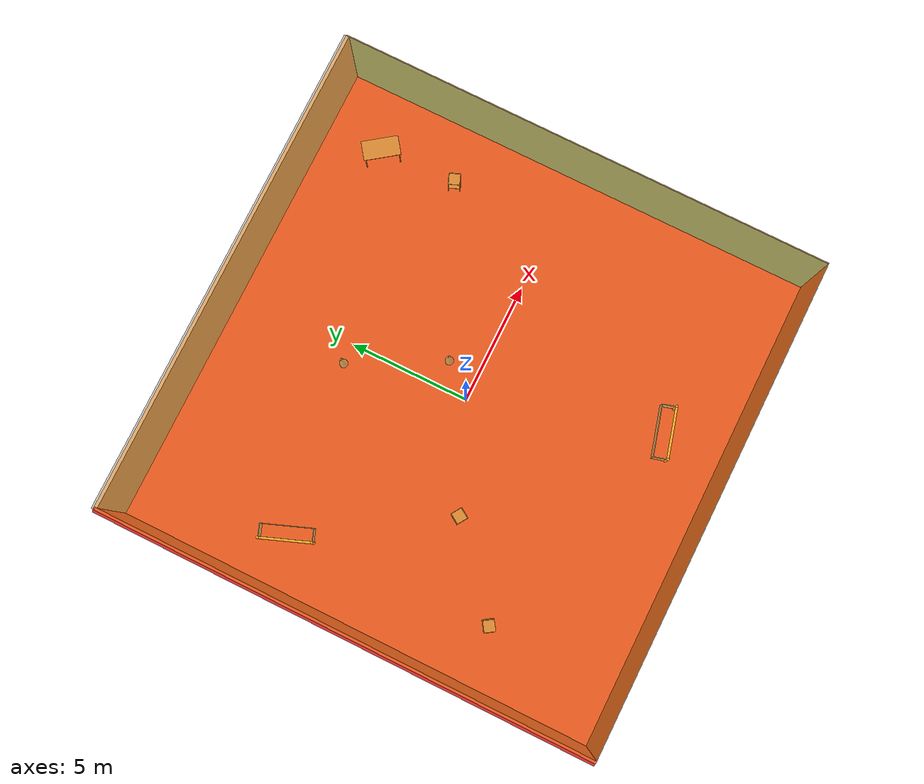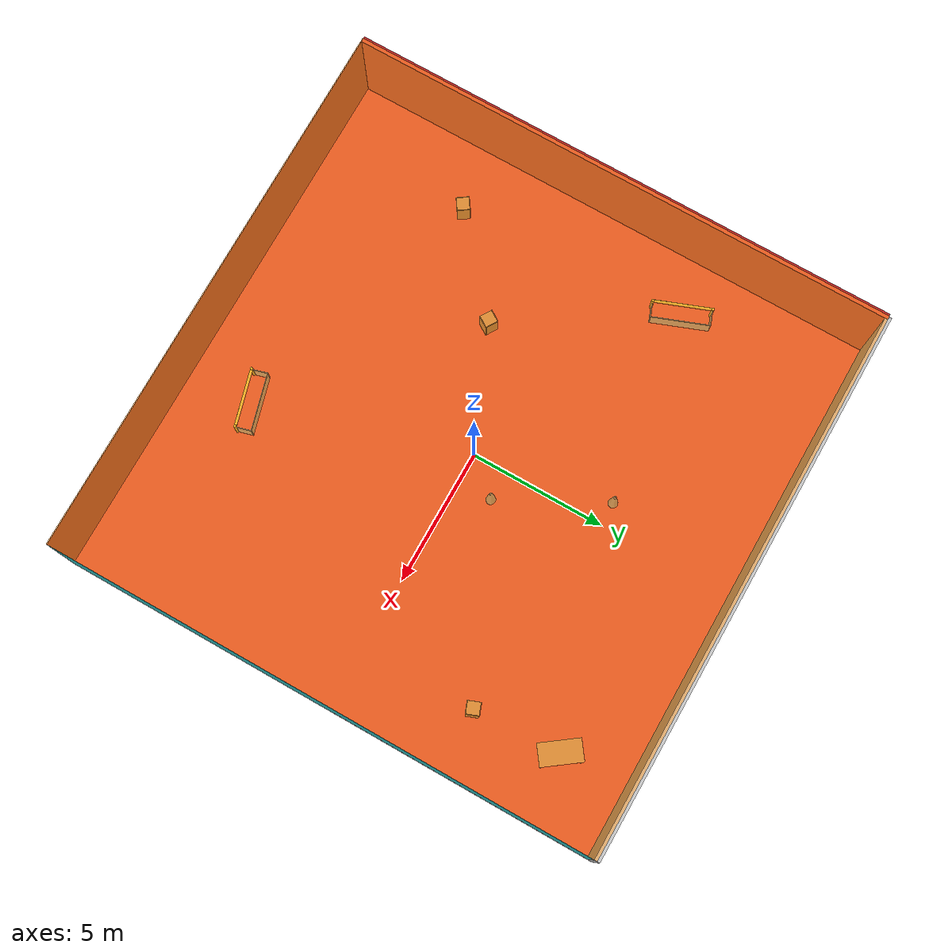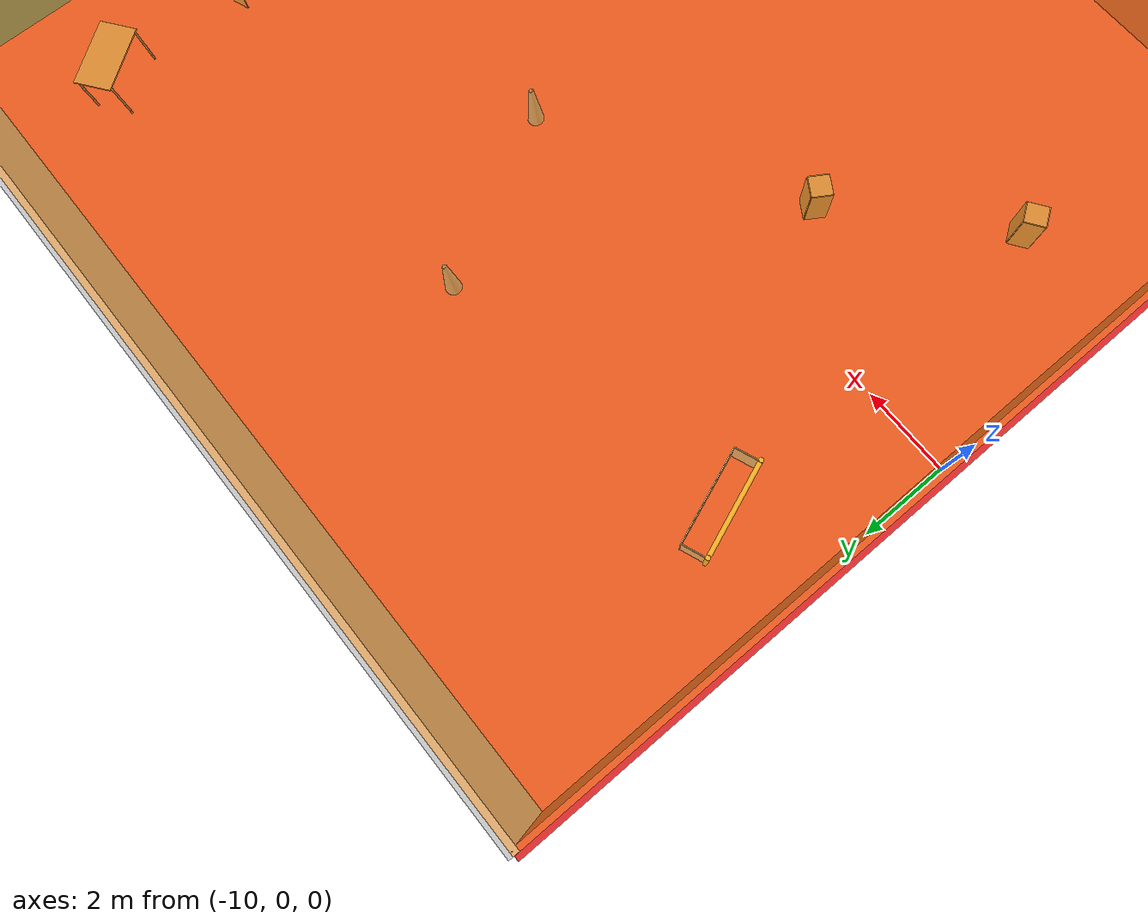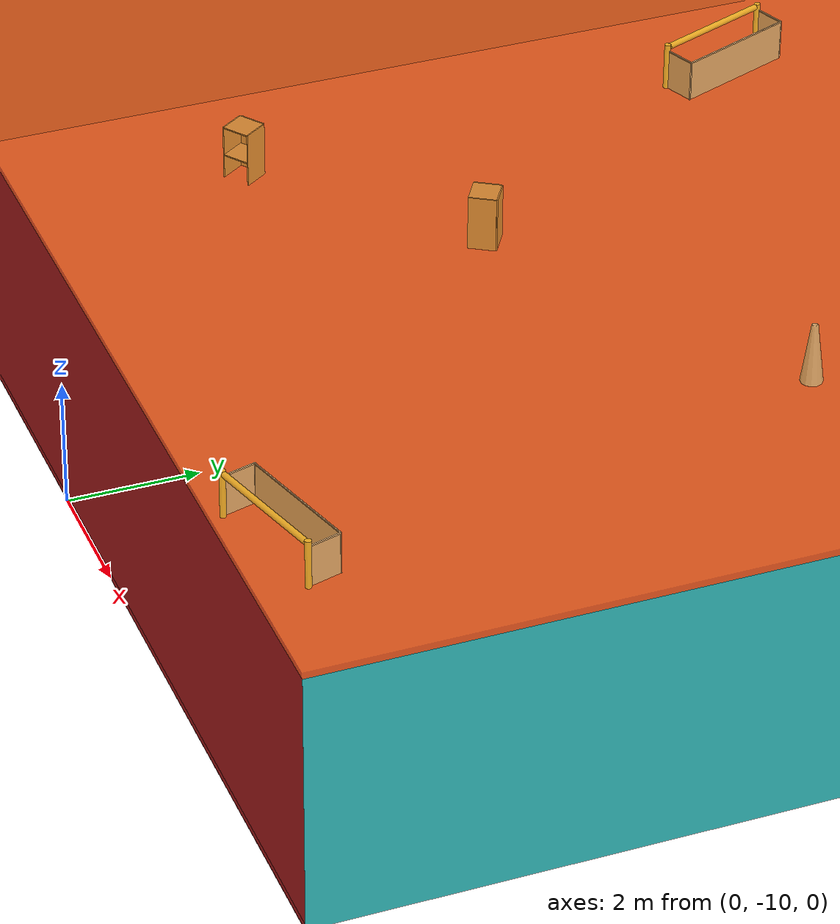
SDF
<sdf version="1.4">
 <world name="default">
  <physics type="ode">
   <max_step_size>0.001</max_step_size>
   <real_time_factor>1</real_time_factor>
   <real_time_update_rate>1000</real_time_update_rate>
   <gravity>0 0 -9.8</gravity>
  </physics>
  <scene><ambient>0.4 0.4 0.4 1</ambient><background>0.7 0.7 0.7 1</background><shadows>1</shadows></scene>
  <model name="Surrounding">
   <static>1</static>
   <link name="Ceiling">
    <collision name="Ceiling_Collision"><geometry><box><size>20 20 0.1</size></box></geometry></collision>
    <visual name="Ceiling_Visual">
     <geometry><box><size>20 20 0.1</size></box></geometry>
     <material>
      <script>
       <uri>file://media/materials/scripts/gazebo.material</uri>
       <name>Gazebo/OrangeTransparent</name>
      </script>
     </material>
    </visual>
    <pose>0 0 4.05 0 0 0</pose>
   </link>
   <link name="Wall_South">
    <collision name="Wall_South_Collision">
     <geometry><box><size>20 0 4</size></box></geometry>
     <pose>0 0 2 0 -0 0</pose>
    </collision>
    <visual name="Wall_South_Visual">
     <pose>0 0 2 0 -0 0</pose>
     <geometry><box><size>20 0 4</size></box></geometry>
     <material>
      <script><uri>file://media/materials/scripts/gazebo.material</uri><name>Gazebo/RedBright</name></script>
     </material>
    </visual>
    <velocity_decay><linear>0</linear><angular>0</angular></velocity_decay>
    <pose>0 -10 0 0 -0 0</pose>
   </link>
   <link name="Wall_East">
    <collision name="Wall_21_Collision">
     <geometry><box><size>20 0 4</size></box></geometry>
     <pose>0 0 2 0 -0 0</pose>
    </collision>
    <visual name="Wall_21_Visual">
     <pose>0 0 2 0 -0 0</pose>
     <geometry><box><size>20 0 4</size></box></geometry>
     <material>
      <script>
       <uri>file://media/materials/scripts/gazebo.material</uri>
       <name>Gazebo/TurquoiseGlowOutline</name>
      </script>
     </material>
    </visual>
    <velocity_decay><linear>0</linear><angular>0</angular></velocity_decay>
    <pose>10 0 0 0 -0 1.5708</pose>
   </link>
   <link name="Wall_North">
    <collision name="Wall_22_Collision">
     <geometry><box><size>20 0.2 4</size></box></geometry>
     <pose>0 0 2 0 -0 0</pose>
    </collision>
    <visual name="Wall_22_Visual">
     <pose>0 0 2 0 -0 0</pose>
     <geometry><box><size>20 0.2 4</size></box></geometry>
     <material>
      <script><uri>file://media/materials/scripts/gazebo.material</uri><name>Gazebo/Pioneer2Body</name></script>
     </material>
    </visual>
    <velocity_decay><linear>0</linear><angular>0</angular></velocity_decay>
    <pose>0 10 0 0 -0 0</pose>
   </link>
   <link name="Wall_West">
    <collision name="Wall_23_Collision">
     <geometry><box><size>20 0.2 4</size></box></geometry>
     <pose>0 0 2 0 -0 0</pose>
    </collision>
    <visual name="Wall_23_Visual">
     <pose>0 0 2 0 -0 0</pose>
     <geometry><box><size>20 0.2 4</size></box></geometry>
     <material>
      <script><uri>file://media/materials/scripts/gazebo.material</uri><name>Gazebo/RedGlow</name></script>
     </material>
    </visual>
    <velocity_decay><linear>0</linear><angular>0</angular></velocity_decay>
    <pose>-10 0 0 0 0 -1.5708</pose>
   </link>
   <link name="Ground_link">
    <collision name="collision">
     <pose>0 0 .05 0 -0 0</pose>
     <geometry><box><size>20 20 0.1</size></box></geometry>
    </collision>
    <visual name="visual">
     <pose>0 0 .05 0 -0 0</pose>
     <geometry><box><size>20 20 0.1</size></box></geometry>
     <material>
      <script><uri>file://media/materials/scripts/gazebo.material</uri><name>Gazebo/RedBright</name></script>
     </material>
    </visual>
   </link>
   <static>1</static>
  </model>
  <spherical_coordinates>
   <surface_model>EARTH_WGS84</surface_model>
   <latitude_deg>0</latitude_deg>
   <longitude_deg>0</longitude_deg>
   <elevation>0</elevation>
   <heading_deg>0</heading_deg>
  </spherical_coordinates>
  <light name="lightball_0" type="diffuse">
   <diffuse>0.8 0.8 0.8 1</diffuse>
   <specular>0.2 0.2 0.2 1</specular>
   <attenuation>
    <range>100</range>
    <constant>0.7</constant>
    <linear>0.01</linear>
    <quadratic>0.001</quadratic>
   </attenuation>
   <direction>-0.5 0.1 -0.9</direction>
   <pose>-9.63614810532 -5.95777228387 1.70318654904 0 0 0</pose>
  </light>
  <light name="lightball_1" type="diffuse">
   <diffuse>0.8 0.8 0.8 1</diffuse>
   <specular>0.2 0.2 0.2 1</specular>
   <attenuation>
    <range>100</range>
    <constant>0.7</constant>
    <linear>0.01</linear>
    <quadratic>0.001</quadratic>
   </attenuation>
   <direction>-0.5 0.1 -0.9</direction>
   <pose>-2.31205533828 -7.8021780866 1.16627104146 0 0 0</pose>
  </light>
  <light name="lightball_2" type="diffuse">
   <diffuse>0.8 0.8 0.8 1</diffuse>
   <specular>0.2 0.2 0.2 1</specular>
   <attenuation>
    <range>100</range>
    <constant>0.7</constant>
    <linear>0.01</linear>
    <quadratic>0.001</quadratic>
   </attenuation>
   <direction>-0.5 0.1 -0.9</direction>
   <pose>-5.03641484893 3.25833449955 1.73016567816 0 0 0</pose>
  </light>
  <light name="lightball_3" type="diffuse">
   <diffuse>0.8 0.8 0.8 1</diffuse>
   <specular>0.2 0.2 0.2 1</specular>
   <attenuation>
    <range>100</range>
    <constant>0.7</constant>
    <linear>0.01</linear>
    <quadratic>0.001</quadratic>
   </attenuation>
   <direction>-0.5 0.1 -0.9</direction>
   <pose>-2.0057767282 1.2772302 2.75496220398 0 0 0</pose>
  </light>
  <light name="lightball_4" type="diffuse">
   <diffuse>0.8 0.8 0.8 1</diffuse>
   <specular>0.2 0.2 0.2 1</specular>
   <attenuation>
    <range>100</range>
    <constant>0.7</constant>
    <linear>0.01</linear>
    <quadratic>0.001</quadratic>
   </attenuation>
   <direction>-0.5 0.1 -0.9</direction>
   <pose>-5.77659299532 7.26100424136 1.55481270072 0 0 0</pose>
  </light>
  <include><uri>model://cabinet</uri><pose>-7.47981557171 -4.68341062954 0 0 0 2.17060979302</pose></include>
  <include>
   <uri>model://robocup_3Dsim_goal</uri>
   <pose>-8.05004119228 3.77056138365 0 0 0 0.360772384672</pose>
  </include>
  <include><uri>model://cabinet</uri><pose>-4.26289692189 -1.83114080351 0 0 0 1.00920518308</pose></include>
  <include>
   <uri>model://construction_cone</uri>
   <pose>-0.860539951465 4.97827356296 0 0 0 2.22385979196</pose>
  </include>
  <include>
   <uri>model://robocup_3Dsim_goal</uri>
   <pose>2.29018179583 -7.79578113603 0 0 0 1.83966686191</pose>
  </include>
  <include>
   <uri>model://construction_cone</uri>
   <pose>1.09188064781 1.27649220405 0 0 0 0.103382796581</pose>
  </include>
  <include><uri>model://cabinet</uri><pose>7.60880447588 4.27619082516 0 0 0 0.361799976721</pose></include>
  <include><uri>model://table</uri><pose>7.46207619852 7.47680200251 0 0 0 2.20316030401</pose></include>
 </world>
</sdf>

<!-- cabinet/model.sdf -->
<sdf version="1.5">
  <model name="cabinet">
    <static>true</static>
    <link name="cabinet_bottom_plate">
      <inertial>
        <pose>0 0 -1 0 0 0</pose>
        <inertia>
          <ixx>2.050000</ixx>
          <ixy>0</ixy>
          <ixz>0</ixz>
          <iyy>2.050000</iyy>
          <iyz>0</iyz>
          <izz>2.050000</izz>
        </inertia>
        <mass>25.000000</mass>
      </inertial>
      <collision name="cabinet_bottom_plate_geom">
        <pose>0 0 0.010000 0 0 0</pose>
        <geometry>
          <box>
            <size>0.450000 0.450000 0.020000</size>
          </box>
        </geometry>
      </collision>
      <visual name="cabinet_bottom_plate_geom_visual">
        <pose>0 0 0.010000 0 0 0</pose>
        <geometry>
          <box>
            <size>0.450000 0.450000 0.020000</size>
          </box>
        </geometry>
        <material>
          <script>
            <uri>model://media/materials/scripts/gazebo.material</uri>
            <name>Gazebo/Wood</name>
          </script>
        </material>
      </visual>
      <collision name="cabinet_bottom_plate_geom_cabinet_back_plate">
        <pose>0.235000 0 0.510000 0 0 0</pose>
        <geometry>
          <box>
            <size>0.020000 0.450000 1.020000</size>
          </box>
        </geometry>
      </collision>
      <visual name="cabinet_bottom_plate_geom_cabinet_back_plate_visual">
        <pose>0.235000 0 0.510000 0 0 0</pose>
        <geometry>
          <box>
            <size>0.020000 0.450000 1.020000</size>
          </box>
        </geometry>
        <material>
          <script>
            <uri>model://media/materials/scripts/gazebo.material</uri>
            <name>Gazebo/Wood</name>
          </script>
        </material>
      </visual>
      <collision name="cabinet_bottom_plate_geom_cabinet_left_plate">
        <pose>0 0.235000 0.510000 0 0 0</pose>
        <geometry>
          <box>
            <size>0.450000 0.020000 1.020000</size>
          </box>
        </geometry>
      </collision>
      <visual name="cabinet_bottom_plate_geom_cabinet_left_plate_visual">
        <pose>0 0.235000 0.510000 0 0 0</pose>
        <geometry>
          <box>
            <size>0.450000 0.020000 1.020000</size>
          </box>
        </geometry>
        <material>
          <script>
            <uri>model://media/materials/scripts/gazebo.material</uri>
            <name>Gazebo/Wood</name>
          </script>
        </material>
      </visual>
      <collision name="cabinet_bottom_plate_geom_cabinet_middle_plate">
        <pose>0 0 0.510000 0 0 0</pose>
        <geometry>
          <box>
            <size>0.450000 0.450000 0.020000</size>
          </box>
        </geometry>
      </collision>
      <visual name="cabinet_bottom_plate_geom_cabinet_middle_plate_visual">
        <pose>0 0 0.510000 0 0 0</pose>
        <geometry>
          <box>
            <size>0.450000 0.450000 0.020000</size>
          </box>
        </geometry>
        <material>
          <script>
            <uri>model://media/materials/scripts/gazebo.material</uri>
            <name>Gazebo/Wood</name>
          </script>
        </material>
      </visual>
      <collision name="cabinet_bottom_plate_geom_cabinet_right_plate">
        <pose>0 -0.235000 0.510000 0 0 0</pose>
        <geometry>
          <box>
            <size>0.450000 0.020000 1.020000</size>
          </box>
        </geometry>
      </collision>
      <visual name="cabinet_bottom_plate_geom_cabinet_right_plate_visual">
        <pose>0 -0.235000 0.510000 0 0 0</pose>
        <geometry>
          <box>
            <size>0.450000 0.020000 1.020000</size>
          </box>
        </geometry>
        <material>
          <script>
            <uri>model://media/materials/scripts/gazebo.material</uri>
            <name>Gazebo/Wood</name>
          </script>
        </material>
      </visual>
      <collision name="cabinet_bottom_plate_geom_cabinet_top_plate">
        <pose>0 0 1.010000 0 0 0</pose>
        <geometry>
          <box>
            <size>0.450000 0.450000 0.020000</size>
          </box>
        </geometry>
      </collision>
      <visual name="cabinet_bottom_plate_geom_cabinet_top_plate_visual">
        <pose>0 0 1.010000 0 0 0</pose>
        <geometry>
          <box>
            <size>0.450000 0.450000 0.020000</size>
          </box>
        </geometry>
        <material>
          <script>
            <uri>model://media/materials/scripts/gazebo.material</uri>
            <name>Gazebo/Wood</name>
          </script>
        </material>
      </visual>
    </link>
  </model>
</sdf>

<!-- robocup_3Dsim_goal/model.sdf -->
<sdf version="1.5">
  <model name="robocup_3d_goal">
    <static>true</static>
    <link name="left_post">
      <pose>0 1.05 0.45 0 0 0</pose>
      <collision name="collision">
        <geometry>
          <cylinder>
            <radius>0.05</radius>
            <length>0.9</length>
          </cylinder>
        </geometry>
      </collision>
      <visual name="visual">
        <geometry>
          <cylinder>
            <radius>0.05</radius>
            <length>0.9</length>
          </cylinder>
        </geometry>
        <material>
          <script>
            <uri>file://media/materials/scripts/gazebo.material</uri>
            <name>Gazebo/ZincYellow</name>
          </script>
        </material>
      </visual>
    </link>
    <link name="left_support_horiz_lower">
      <pose>0.30 1.05 0.01 0 0 0</pose>
      <collision name="collision">
        <geometry>
          <box>
            <size>0.50 0.02 0.02</size>
          </box>
        </geometry>
      </collision>
      <visual name="visual">
        <geometry>
          <box>
            <size>0.50 0.02 0.02</size>
          </box>
        </geometry>
        <material>
          <script>
            <uri>file://media/materials/scripts/gazebo.material</uri>
            <name>Gazebo/White</name>
          </script>
        </material>
      </visual>
    </link>
    <link name="left_support_horiz_upper">
      <pose>0.30 1.05 0.79 0 0 0</pose>
      <collision name="collision">
        <geometry>
          <box>
            <size>0.50 0.02 0.02</size>
          </box>
        </geometry>
      </collision>
      <visual name="visual">
        <geometry>
          <box>
            <size>0.50 0.02 0.02</size>
          </box>
        </geometry>
        <material>
          <script>
            <uri>file://media/materials/scripts/gazebo.material</uri>
            <name>Gazebo/White</name>
          </script>
        </material>
      </visual>
    </link>
    <link name="left_support_vertical">
      <pose>0.56 1.05 0.4 0 1.5708 0</pose>
      <collision name="collision">
        <geometry>
          <box>
            <size>0.80 0.02 0.02</size>
          </box>
        </geometry>
      </collision>
      <visual name="visual">
        <geometry>
          <box>
            <size>0.80 0.02 0.02</size>
          </box>
        </geometry>
        <material>
          <script>
            <uri>file://media/materials/scripts/gazebo.material</uri>
            <name>Gazebo/White</name>
          </script>
        </material>
      </visual>
    </link>
    <link name="right_support_horiz_lower">
      <pose>0.30 -1.05 0.01 0 0 0</pose>
      <collision name="collision">
        <geometry>
          <box>
            <size>0.50 0.02 0.02</size>
          </box>
        </geometry>
      </collision>
      <visual name="visual">
        <geometry>
          <box>
            <size>0.50 0.02 0.02</size>
          </box>
        </geometry>
        <material>
          <script>
            <uri>file://media/materials/scripts/gazebo.material</uri>
            <name>Gazebo/White</name>
          </script>
        </material>
      </visual>
    </link>
    <link name="right_support_horiz_upper">
      <pose>0.30 -1.05 0.79 0 0 0</pose>
      <collision name="collision">
        <geometry>
          <box>
            <size>0.50 0.02 0.02</size>
          </box>
        </geometry>
      </collision>
      <visual name="visual">
        <geometry>
          <box>
            <size>0.50 0.02 0.02</size>
          </box>
        </geometry>
        <material>
          <script>
            <uri>file://media/materials/scripts/gazebo.material</uri>
            <name>Gazebo/White</name>
          </script>
        </material>
      </visual>
    </link>
    <link name="right_support_vertical">
      <pose>0.56 -1.05 0.4 0 1.5708 0</pose>
      <collision name="collision">
        <geometry>
          <box>
            <size>0.80 0.02 0.02</size>
          </box>
        </geometry>
      </collision>
      <visual name="visual">
        <geometry>
          <box>
            <size>0.80 0.02 0.02</size>
          </box>
        </geometry>
        <material>
          <script>
            <uri>file://media/materials/scripts/gazebo.material</uri>
            <name>Gazebo/White</name>
          </script>
        </material>
      </visual>
    </link>
    <link name="center_support_horiz_lower">
      <pose>0.56 0 0.01 0 1.5708 0</pose>
      <collision name="collision">
        <geometry>
          <box>
            <size>0.02 2.08 0.02</size>
          </box>
        </geometry>
      </collision>
      <visual name="visual">
        <geometry>
          <box>
            <size>0.02 2.08 0.02</size>
          </box>
        </geometry>
        <material>
          <script>
            <uri>file://media/materials/scripts/gazebo.material</uri>
            <name>Gazebo/White</name>
          </script>
        </material>
      </visual>
    </link>
    <link name="center_support_horiz_upper">
      <pose>0.56 0 0.79 0 1.5708 0</pose>
      <collision name="collision">
        <geometry>
          <box>
            <size>0.02 2.08 0.02</size>
          </box>
        </geometry>
      </collision>
      <visual name="visual">
        <geometry>
          <box>
            <size>0.02 2.08 0.02</size>
          </box>
        </geometry>
        <material>
          <script>
            <uri>file://media/materials/scripts/gazebo.material</uri>
            <name>Gazebo/White</name>
          </script>
        </material>
      </visual>
    </link>
    <link name="right_post">
      <pose>0 -1.05 0.45 0 0 0</pose>
      <collision name="collision">
        <geometry>
          <cylinder>
            <radius>0.05</radius>
            <length>0.9</length>
          </cylinder>
        </geometry>
      </collision>
      <visual name="visual">
        <geometry>
          <cylinder>
            <radius>0.05</radius>
            <length>0.9</length>
          </cylinder>
        </geometry>
        <material>
          <script>
            <uri>file://media/materials/scripts/gazebo.material</uri>
            <name>Gazebo/ZincYellow</name>
          </script>
        </material>
      </visual>
    </link>
    <link name="crossbar">
      <pose>0 0 0.85 1.57 1.57 0</pose>
      <collision name="collision">
        <geometry>
          <cylinder>
            <radius>0.05</radius>
            <length>2.0</length>
          </cylinder>
        </geometry>
      </collision>
      <visual name="visual">
        <geometry>
          <cylinder>
            <radius>0.05</radius>
            <length>2.0</length>
          </cylinder>
        </geometry>
        <material>
          <script>
            <uri>file://media/materials/scripts/gazebo.material</uri>
            <name>Gazebo/ZincYellow</name>
          </script>
        </material>
      </visual>
    </link>
    <link name="center_net">
      <pose>0.56 0 0.40 0 0 0</pose>
      <collision name="collision">
        <geometry>
          <box>
            <size>0.01 2.1 0.80</size>
          </box>
        </geometry>
      </collision>
      <visual name="visual">
        <geometry>
          <box>
            <size>0.01 2.1 0.80</size>
          </box>
        </geometry>
        <material>
          <script>
            <uri>model://../model_source/models/robocup09_spl_field/materials/scripts/</uri>
            <uri>model://../model_source/models/robocup09_spl_field/materials/textures/</uri>
            <name>RoboCup/Net</name>
          </script>
        </material>
      </visual>
    </link>
    <link name="left_net">
      <pose>0.30 1.05 0.40 0 0 0</pose>
      <collision name="collision">
        <geometry>
          <box>
            <size>0.50 0.01 0.76</size>
          </box>
        </geometry>
      </collision>
      <visual name="visual">
        <geometry>
          <box>
            <size>0.50 0.01 0.76</size>
          </box>
        </geometry>
        <material>
          <script>
            <uri>model://../model_source/models/robocup09_spl_field/materials/scripts/</uri>
            <uri>model://../model_source/models/robocup09_spl_field/materials/textures/</uri>
            <name>RoboCup/Net</name>
          </script>
        </material>
      </visual>
    </link>
    <link name="right_net">
      <pose>0.30 -1.05 0.40 0 0 0</pose>
      <collision name="collision">
        <geometry>
          <box>
            <size>0.50 0.01 0.76</size>
          </box>
        </geometry>
      </collision>
      <visual name="visual">
        <geometry>
          <box>
            <size>0.50 0.01 0.76</size>
          </box>
        </geometry>
        <material>
          <script>
            <uri>model://../model_source/models/robocup09_spl_field/materials/scripts/</uri>
            <uri>model://../model_source/models/robocup09_spl_field/materials/textures/</uri>
            <name>RoboCup/Net</name>
          </script>
        </material>
      </visual>
    </link>
  </model>
</sdf>

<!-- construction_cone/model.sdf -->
<sdf version="1.5">
  <model name="Construction Cone">
    <link name="link">
      <collision name="collision">
        <geometry>
          <mesh>
            <scale>10 10 10</scale>
            <uri>file://isr-testbed/construction_cone/meshes/construction_cone.dae</uri>
          </mesh>
        </geometry>
      </collision>
      <visual name="visual">
        <geometry>
          <mesh>
            <scale>10 10 10</scale>
            <uri>file://isr-testbed/construction_cone/meshes/construction_cone.dae</uri>
          </mesh>
        </geometry>
      </visual>
    </link>
  </model>
</sdf>

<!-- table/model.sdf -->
<sdf version="1.5">
  <model name="table">
    <static>true</static>
    <link name="link">
      <collision name="surface">
        <pose>0 0 1.0 0 0 0</pose>
        <geometry>
          <box>
            <size>1.5 0.8 0.03</size>
          </box>
        </geometry>
        <surface>
          <friction>
            <ode>
              <mu>0.6</mu>
              <mu2>0.6</mu2>
            </ode>
          </friction>
        </surface>
      </collision>
      <visual name="visual1">
        <pose>0 0 1.0 0 0 0</pose>
        <geometry>
          <box>
            <size>1.5 0.8 0.03</size>
          </box>
        </geometry>
        <material>
          <script>
            <uri>model://media/materials/scripts/gazebo.material</uri>
            <name>Gazebo/Wood</name>
          </script>
        </material>
      </visual>
      <collision name="front_left_leg">
        <pose>0.68 0.38 0.5 0 0 0</pose>
        <geometry>
          <cylinder>
            <radius>0.02</radius>
            <length>1.0</length>
          </cylinder>
        </geometry>
      </collision>
      <visual name="front_left_leg">
        <pose>0.68 0.38 0.5 0 0 0</pose>
        <geometry>
          <cylinder>
            <radius>0.02</radius>
            <length>1.0</length>
          </cylinder>
        </geometry>
        <material>
          <script>
            <uri>model://media/materials/scripts/gazebo.material</uri>
            <name>Gazebo/Grey</name>
          </script>
        </material>
      </visual>
      <collision name="front_right_leg">
        <pose>0.68 -0.38 0.5 0 0 0</pose>
        <geometry>
          <cylinder>
            <radius>0.02</radius>
            <length>1.0</length>
          </cylinder>
        </geometry>
      </collision>
      <visual name="front_right_leg">
        <pose>0.68 -0.38 0.5 0 0 0</pose>
        <geometry>
          <cylinder>
            <radius>0.02</radius>
            <length>1.0</length>
          </cylinder>
        </geometry>
        <material>
          <script>
            <uri>model://media/materials/scripts/gazebo.material</uri>
            <name>Gazebo/Grey</name>
          </script>
        </material>
      </visual>
      <collision name="back_right_leg">
        <pose>-0.68 -0.38 0.5 0 0 0</pose>
        <geometry>
          <cylinder>
            <radius>0.02</radius>
            <length>1.0</length>
          </cylinder>
        </geometry>
      </collision>
      <visual name="back_right_leg">
        <pose>-0.68 -0.38 0.5 0 0 0</pose>
        <geometry>
          <cylinder>
            <radius>0.02</radius>
            <length>1.0</length>
          </cylinder>
        </geometry>
        <material>
          <script>
            <uri>model://media/materials/scripts/gazebo.material</uri>
            <name>Gazebo/Grey</name>
          </script>
        </material>
      </visual>
      <collision name="back_left_leg">
        <pose>-0.68 0.38 0.5 0 0 0</pose>
        <geometry>
          <cylinder>
            <radius>0.02</radius>
            <length>1.0</length>
          </cylinder>
        </geometry>
      </collision>
      <visual name="back_left_leg">
        <pose>-0.68 0.38 0.5 0 0 0</pose>
        <geometry>
          <cylinder>
            <radius>0.02</radius>
            <length>1.0</length>
          </cylinder>
        </geometry>
        <material>
          <script>
            <uri>model://media/materials/scripts/gazebo.material</uri>
            <name>Gazebo/Grey</name>
          </script>
        </material>
      </visual>
    </link>
  </model>
</sdf>
